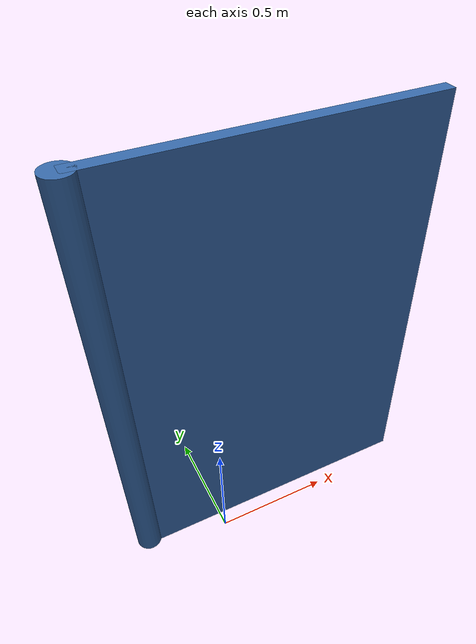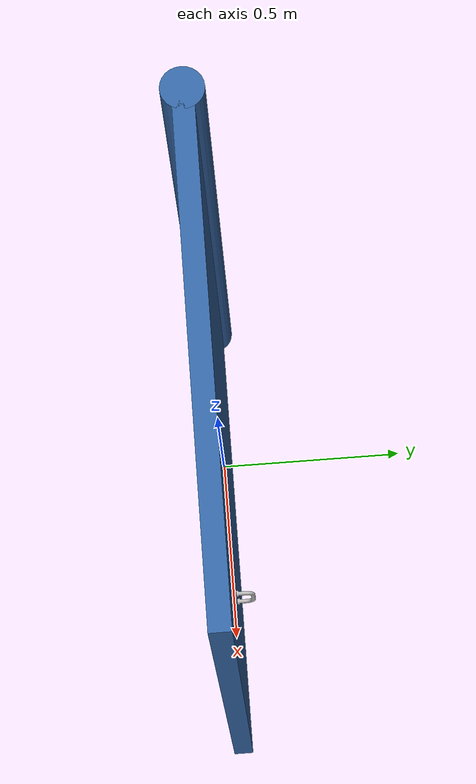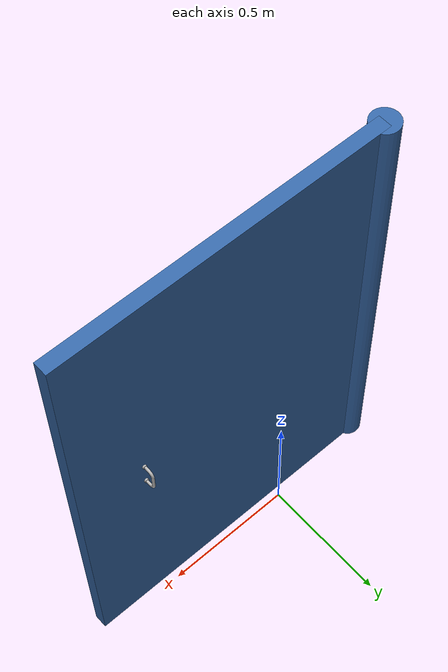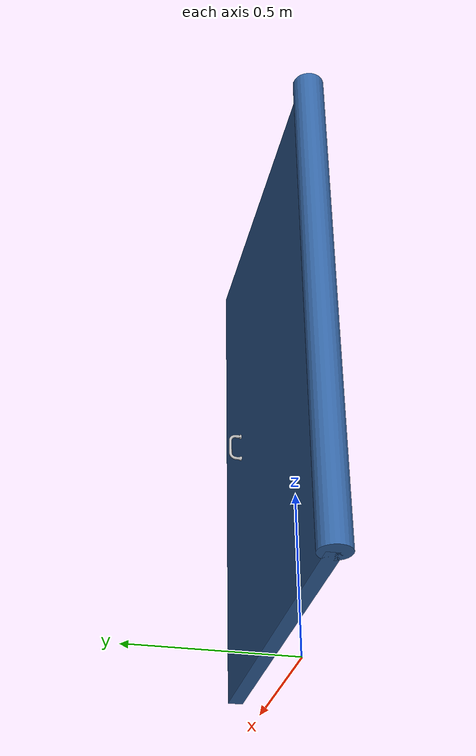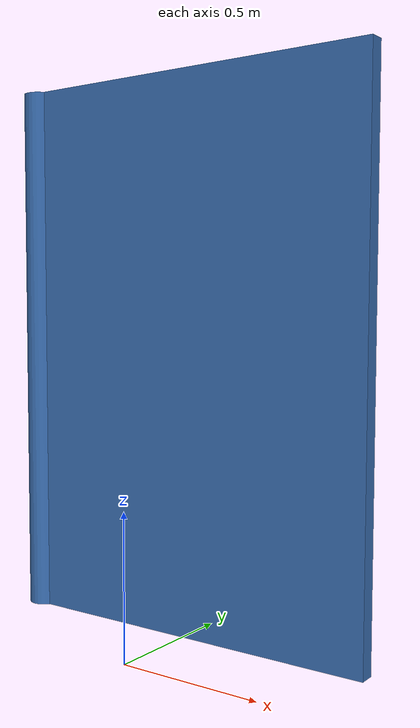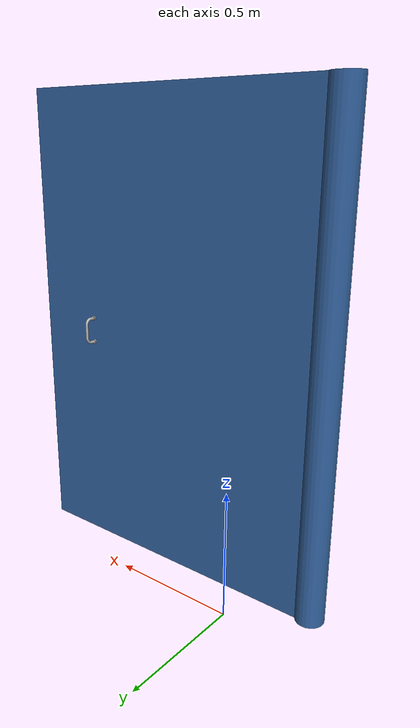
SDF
<?xml version='1.0'?>
<sdf version='1.6'>
  <model name='hinge_door_1.2'>
    <link name='link_0'>
      <inertial>
        <mass>0.11</mass>
        <inertia>
          <ixx>0.0366896</ixx>
          <ixy>0</ixy>
          <ixz>0</ixz>
          <iyy>0.0477583</iyy>
          <iyz>0</iyz>
          <izz>0.0111146</izz>
        </inertia>
        <pose frame=''>0 0 0 0 -0 0</pose>
      </inertial>
      <pose frame=''>0.25 0 1 0 -0 0</pose>
      <gravity>1</gravity>
      <self_collide>0</self_collide>
      <kinematic>0</kinematic>
      <enable_wind>0</enable_wind>
      <visual name='visual'>
        <pose frame=''>0 0 0 0 -0 0</pose>
        <geometry>
          <box>
            <size>1.2 0.05 1.7</size>
          </box>
        </geometry>
        <material>
          <lighting>1</lighting>
          <script>
            <uri>file://media/materials/scripts/gazebo.material</uri>
            <name>Gazebo/Grey</name>
          </script>
          <shader type='pixel'>
            <normal_map>__default__</normal_map>
          </shader>
          <ambient>0.204 0.396 0.643 1</ambient>
          <diffuse>0.7 0.7 0.7 1</diffuse>
          <specular>0.01 0.01 0.01 1</specular>
          <emissive>0 0 0 1</emissive>
        </material>
        <transparency>0</transparency>
        <cast_shadows>1</cast_shadows>
      </visual>
      <collision name='collision'>
        <laser_retro>0</laser_retro>
        <max_contacts>10</max_contacts>
        <pose frame=''>0 0 0 0 -0 0</pose>
        <geometry>
          <box>
            <size>1.2 0.05 1.7</size>
          </box>
        </geometry>
        <surface>
          <friction>
            <ode>
              <mu>1</mu>
              <mu2>1</mu2>
              <fdir1>0 0 0</fdir1>
              <slip1>0</slip1>
              <slip2>0</slip2>
            </ode>
            <torsional>
              <coefficient>1</coefficient>
              <patch_radius>0</patch_radius>
              <surface_radius>0</surface_radius>
              <use_patch_radius>1</use_patch_radius>
              <ode>
                <slip>0</slip>
              </ode>
            </torsional>
          </friction>
          <bounce>
            <restitution_coefficient>0</restitution_coefficient>
            <threshold>1e+06</threshold>
          </bounce>
          <contact>
            <collide_without_contact>0</collide_without_contact>
            <collide_without_contact_bitmask>1</collide_without_contact_bitmask>
            <collide_bitmask>1</collide_bitmask>
            <ode>
              <soft_cfm>0</soft_cfm>
              <soft_erp>0.2</soft_erp>
              <kp>1e+13</kp>
              <kd>1</kd>
              <max_vel>0.01</max_vel>
              <min_depth>0</min_depth>
            </ode>
            <bullet>
              <split_impulse>1</split_impulse>
              <split_impulse_penetration_threshold>-0.01</split_impulse_penetration_threshold>
              <soft_cfm>0</soft_cfm>
              <soft_erp>0.2</soft_erp>
              <kp>1e+13</kp>
              <kd>1</kd>
            </bullet>
          </contact>
        </surface>
      </collision>
    </link>
    <link name='link_1'>
      <inertial>
        <mass>10.9956</mass>
        <inertia>
          <ixx>3.67206</ixx>
          <ixy>0</ixy>
          <ixz>0</ixz>
          <iyy>3.67206</iyy>
          <iyz>0</iyz>
          <izz>0.0137445</izz>
        </inertia>
        <pose frame=''>0 0 0 0 -0 0</pose>
      </inertial>
      <pose frame=''>-0.35 0 1 0 -0 0</pose>
      <gravity>1</gravity>
      <self_collide>0</self_collide>
      <kinematic>0</kinematic>
      <enable_wind>0</enable_wind>
      <visual name='visual'>
        <pose frame=''>0 0 0 0 -0 0</pose>
        <geometry>
          <cylinder>
            <radius>0.05</radius>
            <length>1.7</length>
          </cylinder>
        </geometry>
        <material>
          <lighting>1</lighting>
          <script>
            <uri>file://media/materials/scripts/gazebo.material</uri>
            <name>Gazebo/Grey</name>
          </script>
          <shader type='pixel'>
            <normal_map>__default__</normal_map>
          </shader>
          <ambient>0.204 0.396 0.643 1</ambient>
          <diffuse>0.7 0.7 0.7 1</diffuse>
          <specular>0.01 0.01 0.01 1</specular>
          <emissive>0 0 0 1</emissive>
        </material>
        <transparency>0</transparency>
        <cast_shadows>1</cast_shadows>
      </visual>
      <collision name='collision'>
        <laser_retro>0</laser_retro>
        <max_contacts>10</max_contacts>
        <pose frame=''>0 0 0 0 -0 0</pose>
        <geometry>
          <cylinder>
            <radius>0.05</radius>
            <length>2</length>
          </cylinder>
        </geometry>
        <surface>
          <friction>
            <ode>
              <mu>1</mu>
              <mu2>1</mu2>
              <fdir1>0 0 0</fdir1>
              <slip1>0</slip1>
              <slip2>0</slip2>
            </ode>
            <torsional>
              <coefficient>1</coefficient>
              <patch_radius>0</patch_radius>
              <surface_radius>0</surface_radius>
              <use_patch_radius>1</use_patch_radius>
              <ode>
                <slip>0</slip>
              </ode>
            </torsional>
          </friction>
          <bounce>
            <restitution_coefficient>0</restitution_coefficient>
            <threshold>1e+06</threshold>
          </bounce>
          <contact>
            <collide_without_contact>0</collide_without_contact>
            <collide_without_contact_bitmask>1</collide_without_contact_bitmask>
            <collide_bitmask>1</collide_bitmask>
            <ode>
              <soft_cfm>0</soft_cfm>
              <soft_erp>0.2</soft_erp>
              <kp>1e+13</kp>
              <kd>1</kd>
              <max_vel>0.01</max_vel>
              <min_depth>0</min_depth>
            </ode>
            <bullet>
              <split_impulse>1</split_impulse>
              <split_impulse_penetration_threshold>-0.01</split_impulse_penetration_threshold>
              <soft_cfm>0</soft_cfm>
              <soft_erp>0.2</soft_erp>
              <kp>1e+13</kp>
              <kd>1</kd>
            </bullet>
          </contact>
        </surface>
      </collision>
    </link>

    <link name="knob">
      <inertial>
        <!-- Volume -->
        <mass> 0.1 </mass>
        <!-- Center of mass: -->
        <pose>0.6 0.065 1 0 0 0</pose>

        <inertia>
          <ixx>3.67206</ixx>
          <ixy>0</ixy>
          <ixz>0</ixz>
          <iyy>3.67206</iyy>
          <iyz>0</iyz>
          <izz>0.0137445</izz>
        </inertia>

      </inertial>
      <pose>0.6 0.065 1 0 0 0</pose>
        <visual name="visual">
          <pose frame=''>0 -0.04 0 1.57 0 3.14</pose>
          <geometry>
            <mesh><uri>model://door/door_puller_knob.dae</uri></mesh>
          </geometry>
        </visual>

        <collision name="collision">
          <pose frame=''>0 -0.04 0 1.57 0 3.14</pose>
          <geometry>
            <mesh><uri>model://door/door_puller_knob.dae</uri></mesh>
          </geometry>
          <max_contacts>10</max_contacts>
          <surface>
            <friction>
              <ode>
                <mu>0.8</mu>
                <mu2>0.8</mu2>
                <slip1>0</slip1>
                <slip2>0</slip2>
              </ode>
              <torsional>
                <ode/>
              </torsional>
            </friction>
            <contact>
              <ode>
                <kp>1000000.0</kp>
                <kd>1.0</kd>
                <max_vel>0.0</max_vel>
              </ode>
            </contact>
          </surface>
        </collision>
    </link>

    <joint name='hinge' type='revolute'>
      <parent>link_1</parent>
      <child>link_0</child>
      <pose frame=''>-0.6 0 0 0 -0 0</pose>
      <axis>
        <xyz>0 0 1</xyz>
        <use_parent_model_frame>0</use_parent_model_frame>
        <limit>
          <lower>-1.79769e+308</lower>
          <upper>1.79769e+308</upper>
          <effort>-1</effort>
          <velocity>-1</velocity>
        </limit>
        <dynamics>
          <spring_reference>0</spring_reference>
          <spring_stiffness>0</spring_stiffness>
          <damping>0</damping>
          <friction>0</friction>
        </dynamics>
      </axis>
      <physics>
        <ode>
          <limit>
            <cfm>0</cfm>
            <erp>0.2</erp>
          </limit>
          <suspension>
            <cfm>0</cfm>
            <erp>0.2</erp>
          </suspension>
        </ode>
      </physics>
    </joint>

    <joint name='knob_link' type='fixed'>
      <parent>link_0</parent>
      <child>knob</child>
      <pose frame=''>0 0 0 0 0 0</pose>
      <axis>
        <xyz>0 0 1</xyz>
        <dynamics/>
      </axis>
    </joint>

    <joint name='floor_link' type='fixed'>
      <child>link_1</child>
      <parent>world</parent>
      <axis>
        <xyz>0 0 1</xyz>
        <dynamics/>
      </axis>
    </joint>
    <allow_auto_disable>1</allow_auto_disable>
  </model>
</sdf>
